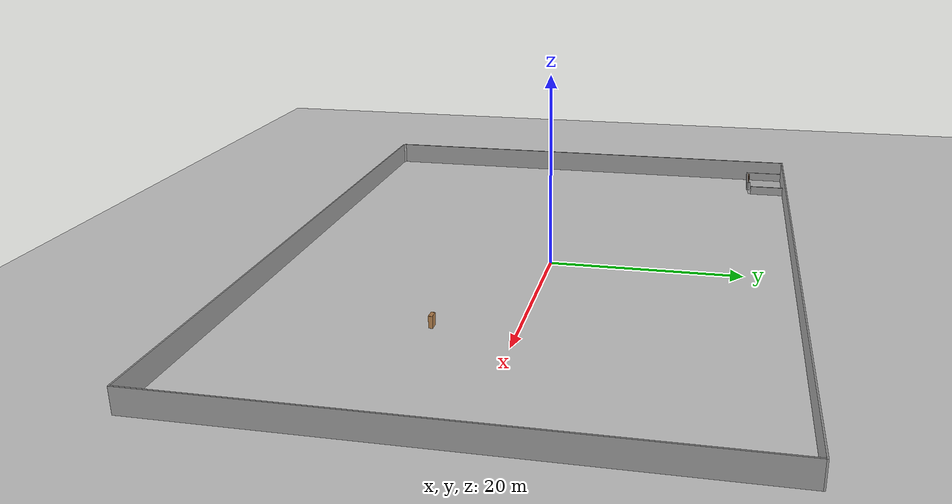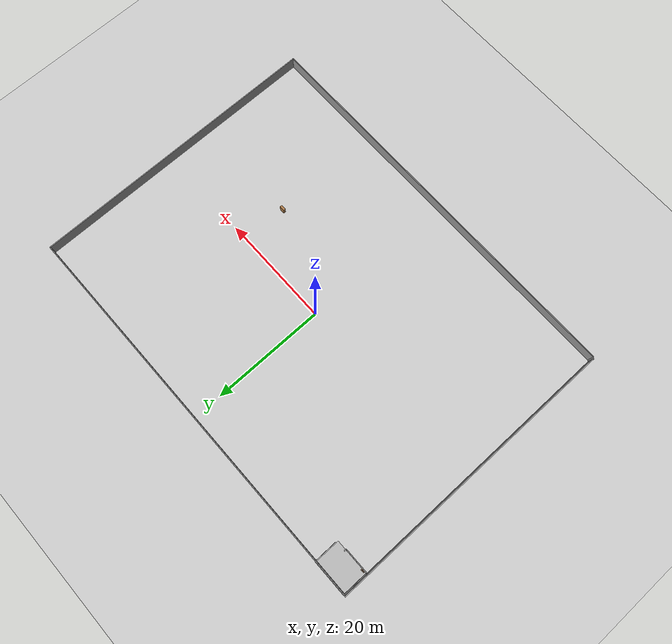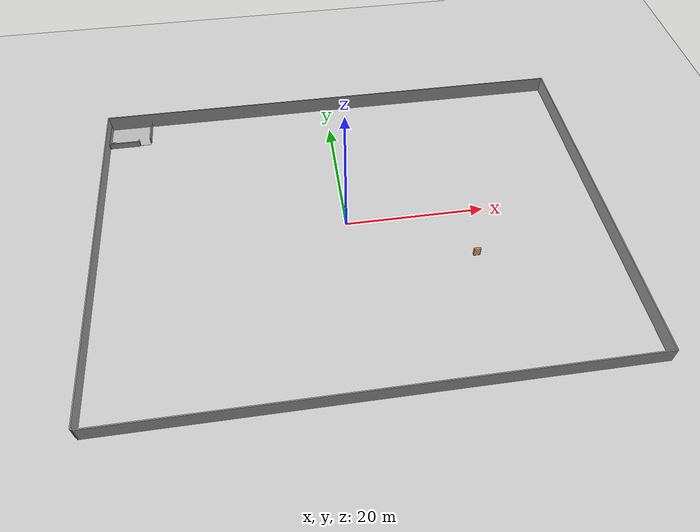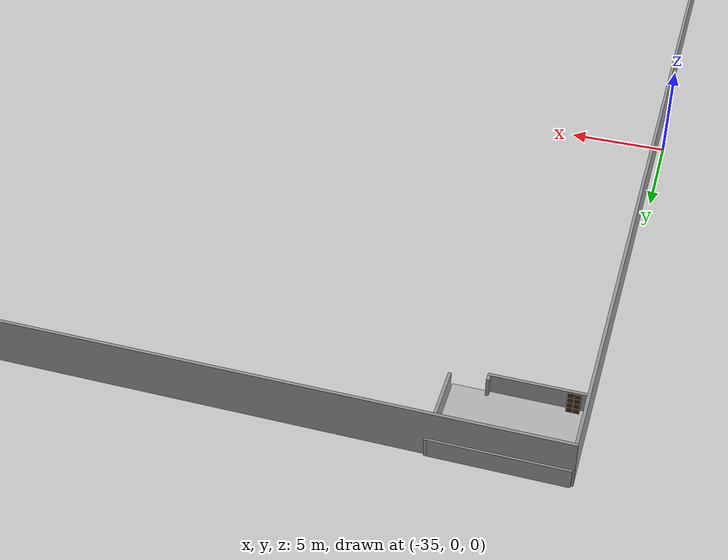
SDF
<sdf version="1.7">
 <world name="default">
  <light name="sun" type="directional">
   <pose>0 0 10 0 -0 0</pose>
   <diffuse>0.8 0.8 0.8 1</diffuse>
   <specular>0.2 0.2 0.2 1</specular>
   <attenuation>
    <range>1000</range>
    <constant>0.9</constant>
    <linear>0.01</linear>
    <quadratic>0.001</quadratic>
   </attenuation>
   <direction>-0.5 0.1 -0.9</direction>
   <spot><inner_angle>0</inner_angle><outer_angle>0</outer_angle><falloff>0</falloff></spot>
  </light>
  <model name="ground_plane">
   <static>1</static>
   <link name="link">
    <collision name="collision">
     <geometry><plane><normal>0 0 1</normal><size>100 100</size></plane></geometry>
     <surface><friction><ode><mu>100</mu><mu2>50</mu2></ode></friction></surface>
    </collision>
    <visual name="visual">
     <cast_shadows>0</cast_shadows>
     <geometry><plane><normal>0 0 1</normal><size>100 100</size></plane></geometry>
     <material>
      <script><uri>file://media/materials/scripts/gazebo.material</uri><name>Gazebo/Grey</name></script>
     </material>
    </visual>
   </link>
  </model>
  <gravity>0 0 -9.8</gravity>
  <magnetic_field>6e-06 2.3e-05 -4.2e-05</magnetic_field>
  <atmosphere type="adiabatic"/>
  <physics type="ode">
   <max_step_size>0.001</max_step_size>
   <real_time_factor>1</real_time_factor>
   <real_time_update_rate>1000</real_time_update_rate>
  </physics>
  <scene><ambient>0.4 0.4 0.4 1</ambient><background>0.7 0.7 0.7 1</background><shadows>1</shadows></scene>
  <audio><device>default</device></audio>
  <spherical_coordinates>
   <surface_model>EARTH_WGS84</surface_model>
   <latitude_deg>0</latitude_deg>
   <longitude_deg>0</longitude_deg>
   <elevation>0</elevation>
   <heading_deg>0</heading_deg>
  </spherical_coordinates>
  <model name="my_world">
   <pose>0.938248 -1.1465 0 0 -0 0</pose>
   <link name="Wall_0">
    <collision name="Wall_0_Collision">
     <geometry><box><size>71 0.15 2.5</size></box></geometry>
     <pose>0 0 1.25 0 -0 0</pose>
    </collision>
    <visual name="Wall_0_Visual">
     <pose>0 0 1.25 0 -0 0</pose>
     <geometry><box><size>71 0.15 2.5</size></box></geometry>
     <material>
      <script><uri>file://media/materials/scripts/gazebo.material</uri><name>Gazebo/Grey</name></script>
      <ambient>1 1 1 1</ambient>
     </material>
     <meta><layer>0</layer></meta>
    </visual>
    <pose>0.140532 -26.1595 0 0 -0 0</pose>
   </link>
   <link name="Wall_1">
    <collision name="Wall_1_Collision">
     <geometry><box><size>52.5 0.15 2.5</size></box></geometry>
     <pose>0 0 1.25 0 -0 0</pose>
    </collision>
    <visual name="Wall_1_Visual">
     <pose>0 0 1.25 0 -0 0</pose>
     <geometry><box><size>52.5 0.15 2.5</size></box></geometry>
     <material>
      <script><uri>file://media/materials/scripts/gazebo.material</uri><name>Gazebo/Grey</name></script>
      <ambient>1 1 1 1</ambient>
     </material>
     <meta><layer>0</layer></meta>
    </visual>
    <pose>35.5655 0.015531 0 0 -0 1.5708</pose>
   </link>
   <link name="Wall_2">
    <collision name="Wall_2_Collision">
     <geometry><box><size>71.25 0.15 2.5</size></box></geometry>
     <pose>0 0 1.25 0 -0 0</pose>
    </collision>
    <visual name="Wall_2_Visual">
     <pose>0 0 1.25 0 -0 0</pose>
     <geometry><box><size>71.25 0.15 2.5</size></box></geometry>
     <material>
      <script><uri>file://media/materials/scripts/gazebo.material</uri><name>Gazebo/Grey</name></script>
      <ambient>1 1 1 1</ambient>
     </material>
     <meta><layer>0</layer></meta>
    </visual>
    <pose>0.015532 26.1905 0 0 -0 3.14159</pose>
   </link>
   <link name="Wall_3">
    <collision name="Wall_3_Collision">
     <geometry><box><size>52.25 0.15 2.5</size></box></geometry>
     <pose>0 0 1.25 0 -0 0</pose>
    </collision>
    <visual name="Wall_3_Visual">
     <pose>0 0 1.25 0 -0 0</pose>
     <geometry><box><size>52.25 0.15 2.5</size></box></geometry>
     <material>
      <script><uri>file://media/materials/scripts/gazebo.material</uri><name>Gazebo/Grey</name></script>
      <ambient>1 1 1 1</ambient>
     </material>
     <meta><layer>0</layer></meta>
    </visual>
    <pose>-35.5345 0.140531 0 0 -0 -1.5708</pose>
   </link>
   <link name="Wall_4">
    <collision name="Wall_4_Collision">
     <geometry><box><size>0.503553 0.15 2.5</size></box></geometry>
     <pose>0 0 1.25 0 -0 0</pose>
    </collision>
    <visual name="Wall_4_Visual">
     <pose>0 0 1.25 0 -0 0</pose>
     <geometry><box><size>0.503553 0.15 2.5</size></box></geometry>
     <material>
      <script><uri>file://media/materials/scripts/gazebo.material</uri><name>Gazebo/Grey</name></script>
      <ambient>1 1 1 1</ambient>
     </material>
     <meta><layer>0</layer></meta>
    </visual>
    <pose>-35.4095 -26.0345 0 0 -0 -0.785398</pose>
   </link>
   <static>1</static>
  </model>
  <model name="Workshop">
   <link name="Wall_10">
    <collision name="Wall_10_Collision">
     <geometry><box><size>6.26 0.15 1</size></box></geometry>
     <pose>0 0 0.5 0 -0 0</pose>
    </collision>
    <visual name="Wall_10_Visual">
     <pose>0 0 0.5 0 -0 0</pose>
     <geometry><box><size>6.26 0.15 1</size></box></geometry>
     <material>
      <script><uri>file://media/materials/scripts/gazebo.material</uri><name>Gazebo/Grey</name></script>
      <ambient>0 0 0 1</ambient>
     </material>
    </visual>
    <pose>-0.0745 2.24856 0 0 -0 0</pose>
   </link>
   <link name="Wall_11">
    <collision name="Wall_11_Collision">
     <geometry><box><size>4.19994 0.15 1</size></box></geometry>
     <pose>0 0 0.5 0 -0 0</pose>
    </collision>
    <visual name="Wall_11_Visual">
     <pose>0 0 0.5 0 -0 0</pose>
     <geometry><box><size>4.19994 0.15 1</size></box></geometry>
     <material>
      <script><uri>file://media/materials/scripts/gazebo.material</uri><name>Gazebo/Grey</name></script>
      <ambient>0 0 0 1</ambient>
     </material>
    </visual>
    <pose>3.12 0.2235 0 0 0 -1.5708</pose>
   </link>
   <link name="Wall_13">
    <collision name="Wall_13_Collision">
     <geometry><box><size>4.55706 0.15 1</size></box></geometry>
     <pose>0 0 0.5 0 -0 0</pose>
    </collision>
    <visual name="Wall_13_Visual">
     <pose>0 0 0.5 0 -0 0</pose>
     <geometry><box><size>4.55706 0.15 1</size></box></geometry>
     <material>
      <script><uri>file://media/materials/scripts/gazebo.material</uri><name>Gazebo/Grey</name></script>
      <ambient>0 0 0 1</ambient>
     </material>
    </visual>
    <pose>-3.1295 -0.075 0 0 0 -1.5708</pose>
   </link>
   <link name="Wall_15">
    <collision name="Wall_15_Collision">
     <geometry><box><size>4.521 0.15 1</size></box></geometry>
     <pose>0 0 0.5 0 -0 0</pose>
    </collision>
    <visual name="Wall_15_Visual">
     <pose>0 0 0.5 0 -0 0</pose>
     <geometry><box><size>4.521 0.15 1</size></box></geometry>
     <material>
      <script><uri>file://media/materials/scripts/gazebo.material</uri><name>Gazebo/Grey</name></script>
      <ambient>0 0 0 1</ambient>
     </material>
    </visual>
    <pose>-0.794 -2.2785 0 0 -0 0</pose>
   </link>
   <link name="Wall_17">
    <collision name="Wall_17_Collision">
     <geometry><box><size>0.302 0.15 1</size></box></geometry>
     <pose>0 0 0.5 0 -0 0</pose>
    </collision>
    <visual name="Wall_17_Visual">
     <pose>0 0 0.5 0 -0 0</pose>
     <geometry><box><size>0.302 0.15 1</size></box></geometry>
     <material>
      <script><uri>file://media/materials/scripts/gazebo.material</uri><name>Gazebo/Grey</name></script>
      <ambient>0 0 0 1</ambient>
     </material>
    </visual>
    <pose>1.392 -2.05744 0 0 -0 1.5708</pose>
   </link>
   <link name="Wall_19">
    <collision name="Wall_19_Collision">
     <geometry><box><size>6.099 4.38 0.013</size></box></geometry>
     <pose>0 0 0.0065 0 -0 0</pose>
     <surface><friction><ode><mu>1</mu><mu2>1</mu2></ode></friction></surface>
    </collision>
    <visual name="Wall_19_Visual">
     <pose>0 0 0.0065 0 -0 0</pose>
     <geometry><box><size>6.099 4.38 0.013</size></box></geometry>
     <material>
      <script>
       <uri>model://Workshop/materials/scripts</uri>
       <uri>model://Workshop/materials/textures</uri>
       <name>rubber</name>
      </script>
     </material>
    </visual>
    <pose>-0.005116 -0.013556 0 0 -0 0</pose>
    <velocity_decay><linear>0</linear><angular>0</angular></velocity_decay>
   </link>
   <static>1</static>
   <pose>-31.3751 22.9034 0 0 0 -0.000246</pose>
  </model>
  <model name="6_Cube_StorageE">
   <link name="Wall_0">
    <pose>0 0 0.01 0 -0 0</pose>
    <inertial>
     <mass>1.6201</mass>
     <inertia><ixx>0.0119</ixx><iyy>0.0631</iyy><izz>0.0513</izz><ixy>0</ixy><ixz>0</ixz><iyz>0</iyz></inertia>
    </inertial>
    <collision name="Wall_0_Collision"><geometry><box><size>0.616 0.296 0.02</size></box></geometry></collision>
    <visual name="Wall_0_Visual">
     <geometry><box><size>0.616 0.296 0.02</size></box></geometry>
     <material>
      <script><uri>file://media/materials/scripts/gazebo.material</uri><name>Gazebo/Grey</name></script>
      <ambient>0.105882 0.0509804 0 1</ambient>
     </material>
    </visual>
   </link>
   <joint name="0_2" type="fixed">
    <pose>-0.308 0 0 0 -0 0</pose>
    <parent>Wall_2</parent>
    <child>Wall_0</child>
    <axis><xyz>1 0 0</xyz><limit><lower>-1e+16</lower><upper>1e+16</upper></limit></axis>
   </joint>
   <joint name="0_12" type="fixed">
    <parent>Wall_12</parent>
    <child>Wall_0</child>
    <axis><xyz>0 0 1</xyz><limit><lower>-1e+16</lower><upper>1e+16</upper></limit></axis>
   </joint>
   <joint name="0_4" type="fixed">
    <pose>0.308 0 0 0 -0 0</pose>
    <parent>Wall_4</parent>
    <child>Wall_0</child>
    <axis><xyz>1 0 0</xyz><limit><lower>-1e+16</lower><upper>1e+16</upper></limit></axis>
   </joint>
   <link name="Wall_10">
    <pose>0 0 0.61 0 -0 0</pose>
    <inertial>
     <mass>1.6201</mass>
     <inertia><ixx>0.0119</ixx><iyy>0.0631</iyy><izz>0.0513</izz><ixy>0</ixy><ixz>0</ixz><iyz>0</iyz></inertia>
    </inertial>
    <collision name="Wall_10_Collision"><geometry><box><size>0.616 0.296 0.02</size></box></geometry></collision>
    <visual name="Wall_10_Visual">
     <geometry><box><size>0.616 0.296 0.02</size></box></geometry>
     <material>
      <script><uri>file://media/materials/scripts/gazebo.material</uri><name>Gazebo/Grey</name></script>
      <ambient>0.105882 0.0509804 0 1</ambient>
     </material>
    </visual>
   </link>
   <joint name="10_2" type="fixed">
    <pose>-0.308 0 0 0 -0 0</pose>
    <parent>Wall_2</parent>
    <child>Wall_10</child>
    <axis><xyz>1 0 0</xyz><limit><lower>-1e+16</lower><upper>1e+16</upper></limit></axis>
   </joint>
   <joint name="10_12" type="fixed">
    <parent>Wall_12</parent>
    <child>Wall_10</child>
    <axis><xyz>0 0 1</xyz><limit><lower>-1e+16</lower><upper>1e+16</upper></limit></axis>
   </joint>
   <joint name="10_4" type="fixed">
    <pose>0.308 0 0 0 -0 0</pose>
    <parent>Wall_4</parent>
    <child>Wall_10</child>
    <axis><xyz>1 0 0</xyz><limit><lower>-1e+16</lower><upper>1e+16</upper></limit></axis>
   </joint>
   <link name="Wall_12">
    <pose>0 0 0.4575 0 -0 0</pose>
    <inertial>
     <mass>2.4065</mass>
     <inertia><ixx>0.0177</ixx><iyy>0.1855</iyy><izz>0.168</izz><ixy>0</ixy><ixz>0</ixz><iyz>0</iyz></inertia>
    </inertial>
    <collision name="Wall_12_Collision"><geometry><box><size>0.02 0.296 0.915</size></box></geometry></collision>
    <visual name="Wall_12_Visual">
     <geometry><box><size>0.02 0.296 0.915</size></box></geometry>
     <material>
      <script><uri>file://media/materials/scripts/gazebo.material</uri><name>Gazebo/Grey</name></script>
      <ambient>0.105882 0.0509804 0 1</ambient>
     </material>
    </visual>
   </link>
   <link name="Wall_2">
    <pose>-0.298 0 0.4575 0 -0 0</pose>
    <inertial>
     <mass>2.4065</mass>
     <inertia><ixx>0.0177</ixx><iyy>0.1855</iyy><izz>0.168</izz><ixy>0</ixy><ixz>0</ixz><iyz>0</iyz></inertia>
    </inertial>
    <collision name="Wall_2_Collision"><geometry><box><size>0.02 0.296 0.915</size></box></geometry></collision>
    <visual name="Wall_2_Visual">
     <geometry><box><size>0.02 0.296 0.915</size></box></geometry>
     <material>
      <script><uri>file://media/materials/scripts/gazebo.material</uri><name>Gazebo/Grey</name></script>
      <ambient>0.105882 0.0509804 0 1</ambient>
     </material>
    </visual>
   </link>
   <link name="Wall_4">
    <pose>0.298 0 0.4575 0 -0 0</pose>
    <inertial>
     <mass>2.4065</mass>
     <inertia><ixx>0.0177</ixx><iyy>0.1855</iyy><izz>0.168</izz><ixy>0</ixy><ixz>0</ixz><iyz>0</iyz></inertia>
    </inertial>
    <collision name="Wall_4_Collision"><geometry><box><size>0.02 0.296 0.915</size></box></geometry></collision>
    <visual name="Wall_4_Visual">
     <geometry><box><size>0.02 0.296 0.915</size></box></geometry>
     <material>
      <script><uri>file://media/materials/scripts/gazebo.material</uri><name>Gazebo/Grey</name></script>
      <ambient>0.105882 0.0509804 0 1</ambient>
     </material>
    </visual>
   </link>
   <link name="Wall_6">
    <pose>0 0 0.905 0 -0 0</pose>
    <inertial>
     <mass>1.6201</mass>
     <inertia><ixx>0.0119</ixx><iyy>0.0631</iyy><izz>0.0513</izz><ixy>0</ixy><ixz>0</ixz><iyz>0</iyz></inertia>
    </inertial>
    <collision name="Wall_6_Collision"><geometry><box><size>0.616 0.296 0.02</size></box></geometry></collision>
    <visual name="Wall_6_Visual">
     <geometry><box><size>0.616 0.296 0.02</size></box></geometry>
     <material>
      <script><uri>file://media/materials/scripts/gazebo.material</uri><name>Gazebo/Grey</name></script>
      <ambient>0.105882 0.0509804 0 1</ambient>
     </material>
    </visual>
   </link>
   <joint name="6_2" type="fixed">
    <pose>-0.308 0 0 0 -0 0</pose>
    <parent>Wall_2</parent>
    <child>Wall_6</child>
    <axis><xyz>2 0 0</xyz><limit><lower>-1e+16</lower><upper>1e+16</upper></limit></axis>
   </joint>
   <joint name="6_12" type="fixed">
    <parent>Wall_12</parent>
    <child>Wall_6</child>
    <axis><xyz>0 0 1</xyz><limit><lower>-1e+16</lower><upper>1e+16</upper></limit></axis>
   </joint>
   <joint name="6_4" type="fixed">
    <pose>0.308 0 0 0 -0 0</pose>
    <parent>Wall_4</parent>
    <child>Wall_6</child>
    <axis><xyz>1 0 0</xyz><limit><lower>-1e+16</lower><upper>1e+16</upper></limit></axis>
   </joint>
   <link name="Wall_8">
    <pose>0 0 0.305 0 -0 0</pose>
    <inertial>
     <mass>1.6201</mass>
     <inertia><ixx>0.0119</ixx><iyy>0.0631</iyy><izz>0.0513</izz><ixy>0</ixy><ixz>0</ixz><iyz>0</iyz></inertia>
    </inertial>
    <collision name="Wall_8_Collision"><geometry><box><size>0.616 0.296 0.02</size></box></geometry></collision>
    <visual name="Wall_8_Visual">
     <geometry><box><size>0.616 0.296 0.02</size></box></geometry>
     <material>
      <script><uri>file://media/materials/scripts/gazebo.material</uri><name>Gazebo/Grey</name></script>
      <ambient>0.105882 0.0509804 0 1</ambient>
     </material>
    </visual>
   </link>
   <joint name="8_2" type="fixed">
    <pose>-0.308 0 0 0 -0 0</pose>
    <parent>Wall_2</parent>
    <child>Wall_8</child>
    <axis><xyz>1 0 0</xyz><limit><lower>-1e+16</lower><upper>1e+16</upper></limit></axis>
   </joint>
   <joint name="8_12" type="fixed">
    <parent>Wall_12</parent>
    <child>Wall_8</child>
    <axis><xyz>0 0 1</xyz><limit><lower>-1e+16</lower><upper>1e+16</upper></limit></axis>
   </joint>
   <joint name="8_4" type="fixed">
    <pose>0.308 0 0 0 -0 0</pose>
    <parent>Wall_4</parent>
    <child>Wall_8</child>
    <axis><xyz>1 0 0</xyz><limit><lower>-1e+16</lower><upper>1e+16</upper></limit></axis>
   </joint>
   <static>1</static>
   <pose>-33.8515 20.8051 0 0 -0 0</pose>
  </model>
  <model name="bookshelf">
   <static>1</static>
   <link name="link">
    <inertial><mass>1</mass></inertial>
    <collision name="back">
     <pose>0 0.005 0.6 0 -0 0</pose>
     <geometry><box><size>0.9 0.01 1.2</size></box></geometry>
    </collision>
    <visual name="visual1">
     <pose>0 0.005 0.6 0 -0 0</pose>
     <geometry><box><size>0.9 0.01 1.2</size></box></geometry>
     <material>
      <script><uri>file://media/materials/scripts/gazebo.material</uri><name>Gazebo/Wood</name></script>
     </material>
    </visual>
    <collision name="left_side">
     <pose>0.45 -0.195 0.6 0 -0 0</pose>
     <geometry><box><size>0.02 0.4 1.2</size></box></geometry>
    </collision>
    <visual name="visual2">
     <pose>0.45 -0.195 0.6 0 -0 0</pose>
     <geometry><box><size>0.02 0.4 1.2</size></box></geometry>
     <material>
      <script><uri>file://media/materials/scripts/gazebo.material</uri><name>Gazebo/Wood</name></script>
     </material>
    </visual>
    <collision name="right_side">
     <pose>-0.45 -0.195 0.6 0 -0 0</pose>
     <geometry><box><size>0.02 0.4 1.2</size></box></geometry>
    </collision>
    <visual name="visual3">
     <pose>-0.45 -0.195 0.6 0 -0 0</pose>
     <geometry><box><size>0.02 0.4 1.2</size></box></geometry>
     <material>
      <script><uri>file://media/materials/scripts/gazebo.material</uri><name>Gazebo/Wood</name></script>
     </material>
    </visual>
    <collision name="bottom">
     <pose>0 -0.195 0.03 0 -0 0</pose>
     <geometry><box><size>0.88 0.4 0.06</size></box></geometry>
    </collision>
    <visual name="visual4">
     <pose>0 -0.195 0.03 0 -0 0</pose>
     <geometry><box><size>0.88 0.4 0.06</size></box></geometry>
     <material>
      <script><uri>file://media/materials/scripts/gazebo.material</uri><name>Gazebo/Wood</name></script>
     </material>
    </visual>
    <collision name="top">
     <pose>0 -0.195 1.19 0 -0 0</pose>
     <geometry><box><size>0.88 0.4 0.02</size></box></geometry>
    </collision>
    <visual name="visual5">
     <pose>0 -0.195 1.19 0 -0 0</pose>
     <geometry><box><size>0.88 0.4 0.02</size></box></geometry>
     <material>
      <script><uri>file://media/materials/scripts/gazebo.material</uri><name>Gazebo/Wood</name></script>
     </material>
    </visual>
    <collision name="low_shelf">
     <pose>0 -0.195 0.43 0 -0 0</pose>
     <geometry><box><size>0.88 0.4 0.02</size></box></geometry>
    </collision>
    <visual name="visual6">
     <pose>0 -0.195 0.43 0 -0 0</pose>
     <geometry><box><size>0.88 0.4 0.02</size></box></geometry>
     <material>
      <script><uri>file://media/materials/scripts/gazebo.material</uri><name>Gazebo/Wood</name></script>
     </material>
    </visual>
    <collision name="high_shelf">
     <pose>0 -0.195 0.8 0 -0 0</pose>
     <geometry><box><size>0.88 0.4 0.02</size></box></geometry>
    </collision>
    <visual name="visual7">
     <pose>0 -0.195 0.8 0 -0 0</pose>
     <geometry><box><size>0.88 0.4 0.02</size></box></geometry>
     <material>
      <script><uri>file://media/materials/scripts/gazebo.material</uri><name>Gazebo/Wood</name></script>
     </material>
    </visual>
   </link>
   <pose>17.0661 -7.71483 0 0 -0 0</pose>
  </model>
 </world>
</sdf>
